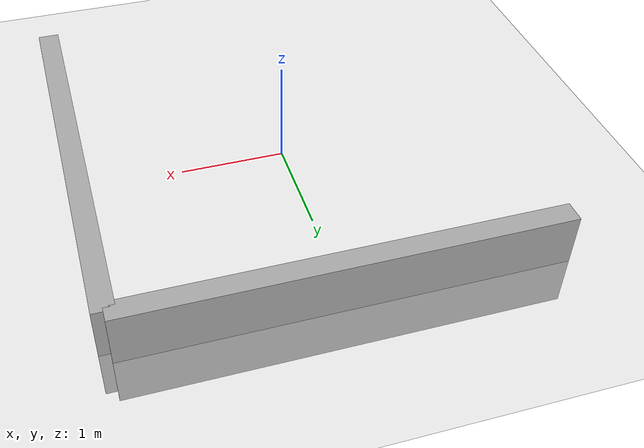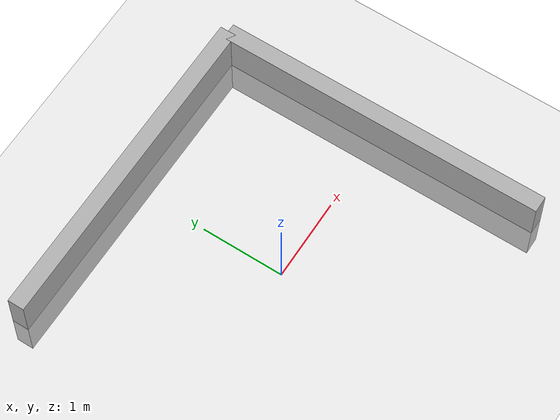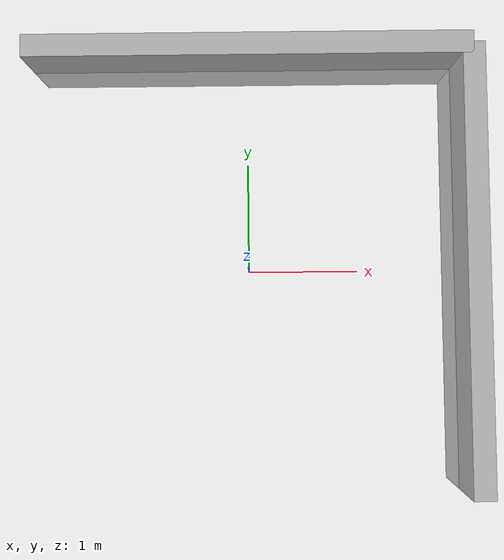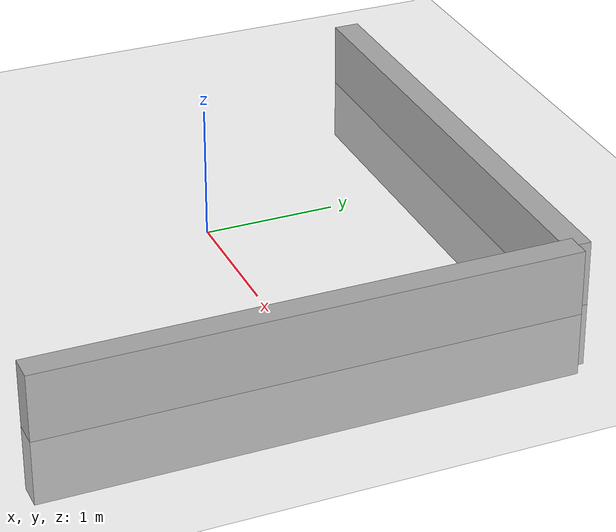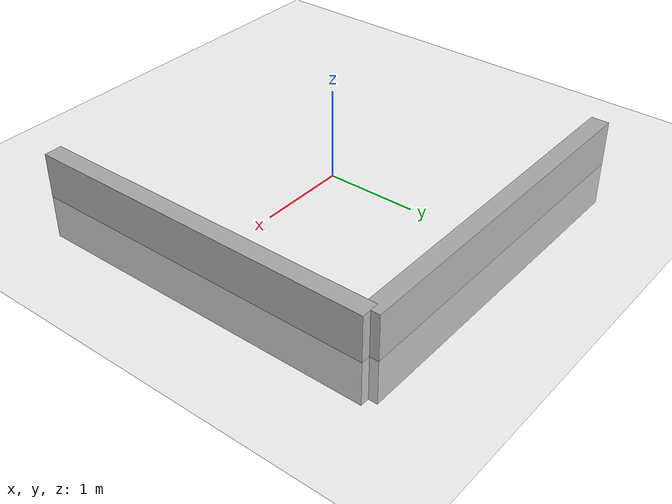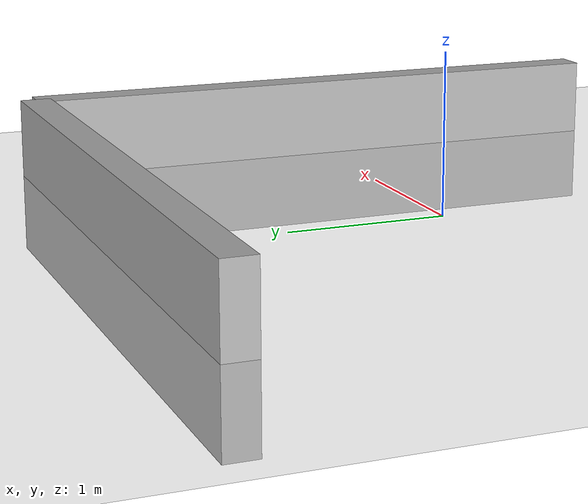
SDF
<?xml version="1.0" ?>
<sdf version="1.6">
  <world name="maze_world">

    <!-- Physics -->
    <physics type="ode">
      <max_step_size>0.001</max_step_size>
      <real_time_factor>1</real_time_factor>
      <real_time_update_rate>1000</real_time_update_rate>
    </physics>

    <!-- Light -->
    <include>
      <uri>model://sun</uri>
    </include>

    <!-- Ground plane -->
    <include>
      <uri>model://ground_plane</uri>
    </include>

    <!-- Maze walls -->
    <model name="maze_wall_1">
      <pose>0 2 0 0 0 0</pose>
      <link name="link">
        <collision name="collision">
          <geometry>
            <box>
              <size>4 0.2 1</size>
            </box>
          </geometry>
        </collision>
        <visual name="visual">
          <geometry>
            <box>
              <size>4 0.2 1</size>
            </box>
          </geometry>
          <material>
            <ambient>0.7 0.7 0.7 1</ambient>
          </material>
        </visual>
      </link>
    </model>

    <model name="maze_wall_2">
      <pose>2 0 0 0 0 0</pose>
      <link name="link">
        <collision name="collision">
          <geometry>
            <box>
              <size>0.2 4 1</size>
            </box>
          </geometry>
        </collision>
        <visual name="visual">
          <geometry>
            <box>
              <size>0.2 4 1</size>
            </box>
          </geometry>
          <material>
            <ambient>0.7 0.7 0.7 1</ambient>
          </material>
        </visual>
      </link>
    </model>

  </world>
</sdf>
